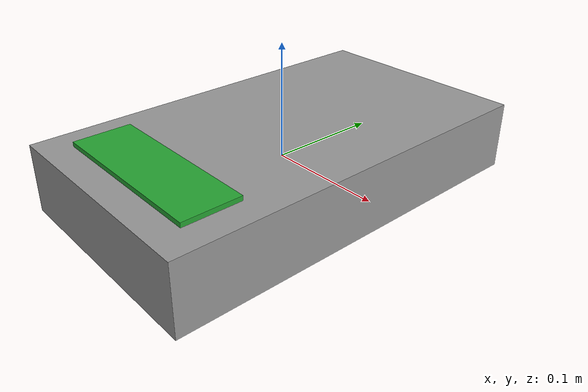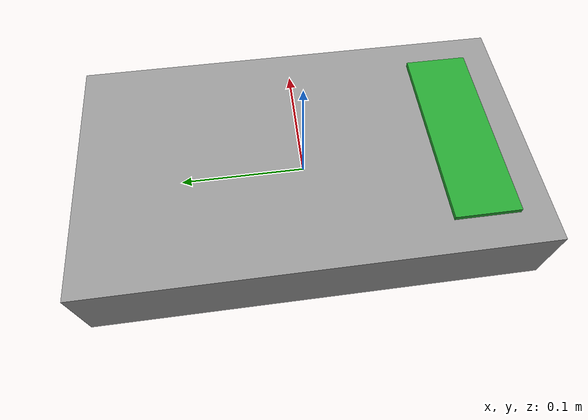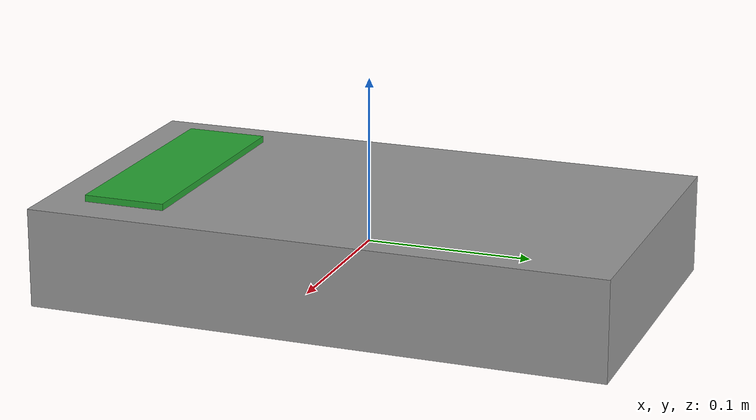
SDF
<?xml version="1.0"?>
<sdf version="1.6">
  <model name="scale">
    <static>true</static>
    <link name="link_scale">
      <collision name="Bsurface">
        <geometry>
          <box>
            <size>0.2 0.35 0.06</size>
          </box>
        </geometry>
        <surface>
          <friction>
            <ode>
              <mu>0.6</mu>
              <mu2>0.6</mu2>
            </ode>
          </friction>
        </surface>
      </collision>
      <visual name="visual1">
        <geometry>
          <box>
            <size>0.2 0.35 0.06</size>
          </box>
        </geometry>
        <material>
          <script>
            <uri>file://media/materials/scripts/gazebo.material</uri>
            <name>Gazebo/Grey</name>
          </script>
        </material>
      </visual>
      <sensor name='my_contact' type='contact'>
          <update_rate> 5 </update_rate>
          <contact>
            <collision>Bsurface</collision>
          </contact>
      </sensor>
    </link>
    <link name="link_led">
      <pose relative_to='link_scale'>0 -0.125 0.032 0 0 0</pose>
      <collision name="cled">
        <geometry>
          <box>
            <size>0.15 0.05 0.004</size>
          </box>
        </geometry>
      </collision>
      <visual name="vled">
        <geometry>
          <box>
            <size>0.15 0.05 0.004</size>
          </box>
        </geometry>
        <material>
          <script>
            <uri>file://media/materials/scripts/gazebo.material</uri>
            <name>Gazebo/Green</name>
          </script>
        </material>
      </visual>
    </link>
  </model>
</sdf>
